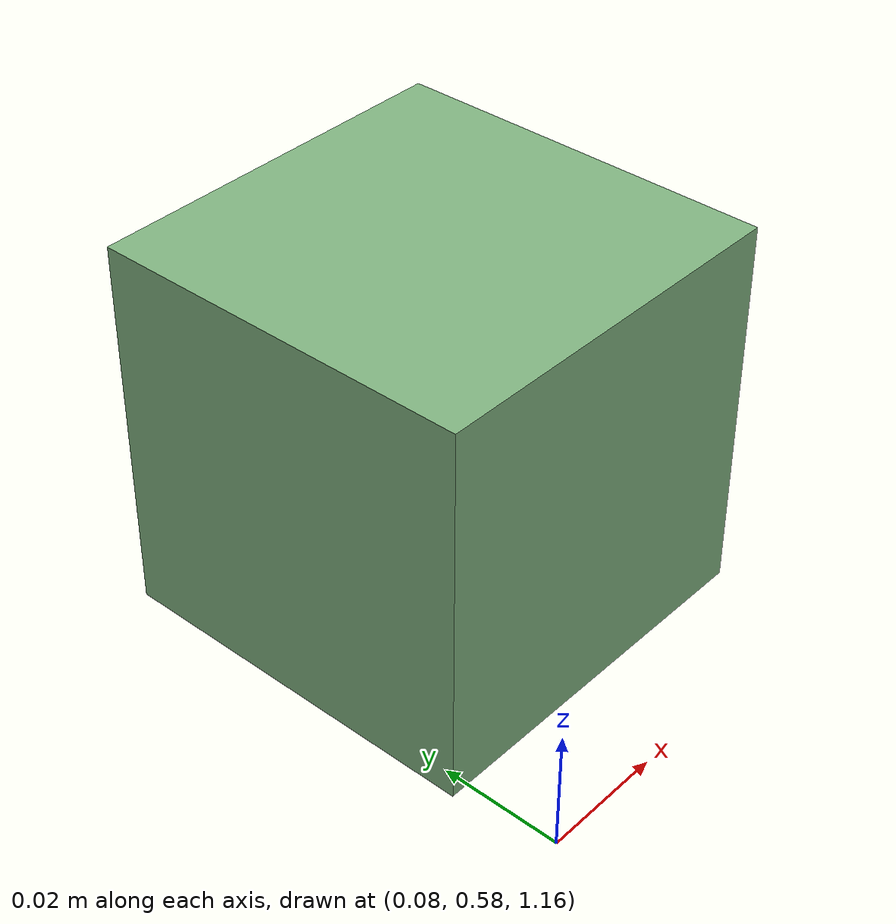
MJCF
<mujoco model="Objs">
  <asset>
    <mesh name="006_mustard_bottle" file="../assets/meshes/006_mustard_bottle.msh" scale="1 1 1"/>
    <texture name="006_mustard_bottle" type="2d" file="assets/textures/006_mustard_bottle.png"/>
    <material name="006_mustard_bottle" texture="006_mustard_bottle"/>

  </asset>

  <default>
    <default class="ycb_col">
	<geom contype="1" conaffinity="1" group="3" rgba=".4 .5 .6 1"/>
    </default>
    <default class="ycb_viz">
	<geom contype="0" conaffinity="0" type="mesh" mass="0"/>
    </default>
  </default>

  <worldbody>
  <!--Grasped Object-->
      <body mocap='true' name="grab_obj" pos="0.1 0.62 1.2">
          <body name="rigid_cube">
              <inertial pos="0 0 0" mass="1" diaginertia="0.0102675 0.0102675 0.00666"/>
              <geom type="box" size="0.03 0.03 0.03" rgba=".5 .7 .5 1" friction="1 1 1"/>
          </body>
      </body>

  </worldbody>

</mujoco>
